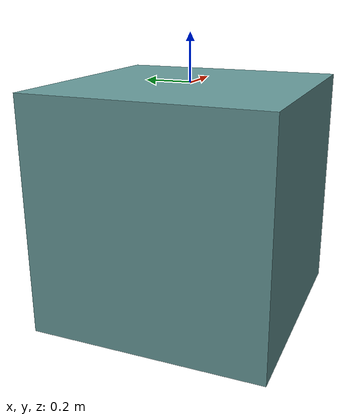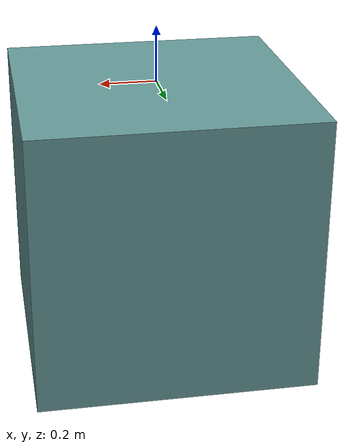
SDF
<?xml version="1.0"?>
<sdf version="1.7">
  <model name="ground_plane_box">
    <link name="ground_plane_box">
      <pose>0 0 0 0 0 0</pose>
      <inertial>
        <!--These values are arbitrary. This is not intended for simulation.-->
        <mass>1.0</mass>
        <inertia>
          <ixx>1.0</ixx>
          <ixy>0</ixy>
          <ixz>0</ixz>
          <iyy>1.0</iyy>
          <iyz>0</iyz>
          <izz>1.0</izz>
        </inertia>
      </inertial>
      <visual name="ground_plane_box_visual">
        <pose>0 0 -0.5 0 0 0</pose>
        <geometry>
          <box>
            <size>1.0 1.0 1.0</size>
          </box>
        </geometry>
        <material>
          <diffuse>0.4 0.6 0.6 1</diffuse>
        </material>
      </visual>
      <collision name="ground_plane_box_collision">
        <pose>0 0 -0.5 0 0 0</pose>
        <geometry>
          <box>
            <size>1.0 1.0 1.0</size>
          </box>
        </geometry>
        <drake:proximity_properties>
          <drake:rigid_hydroelastic/>
        </drake:proximity_properties>
      </collision>
    </link>
  </model>
</sdf>
